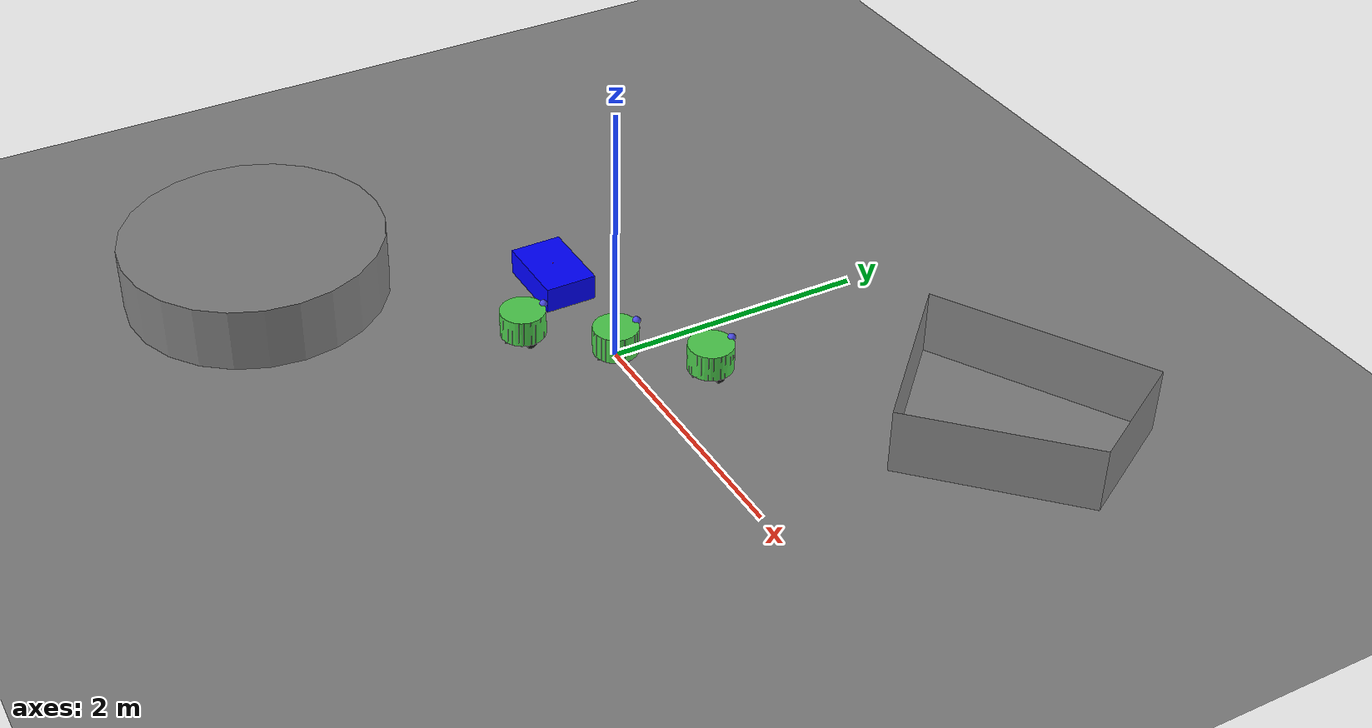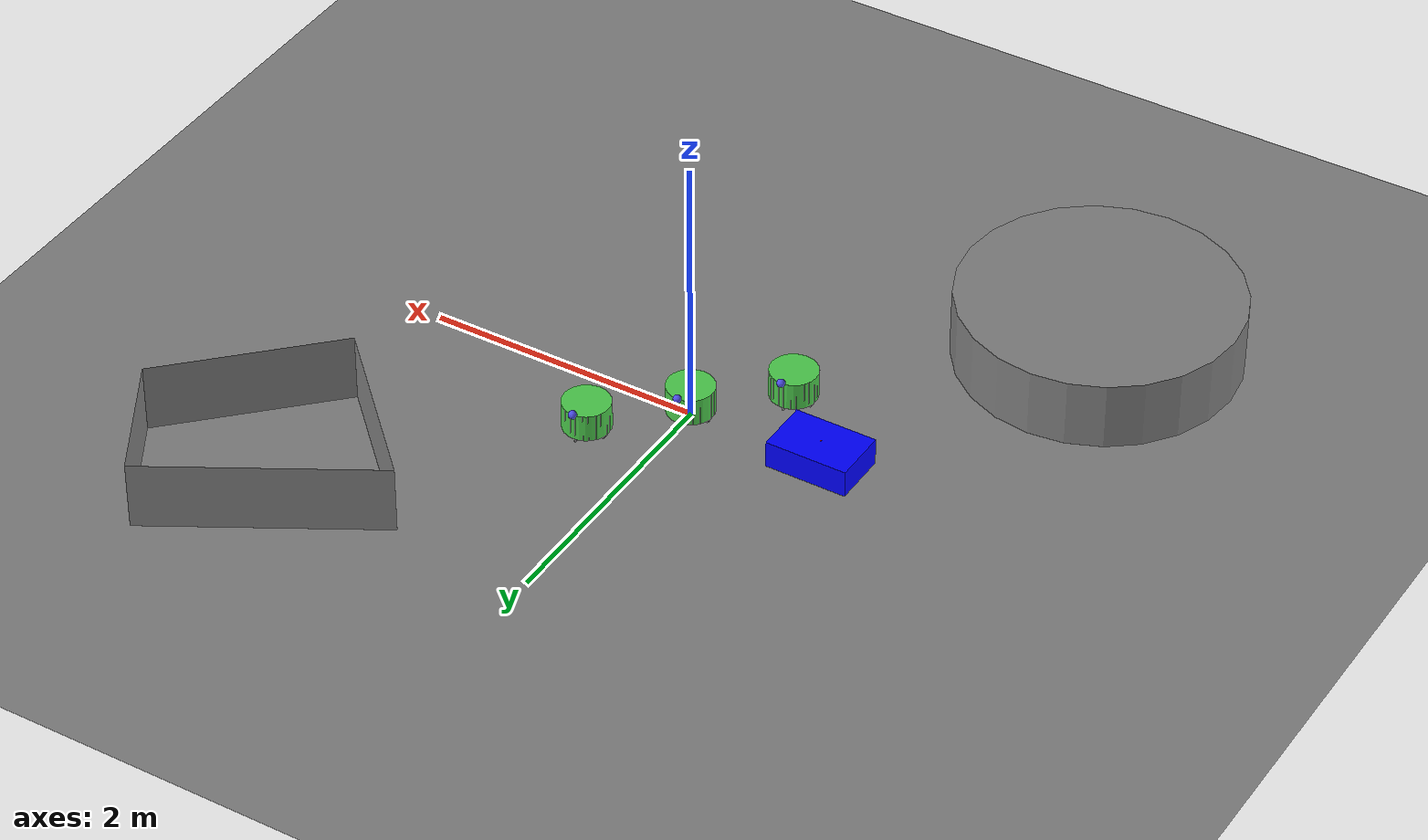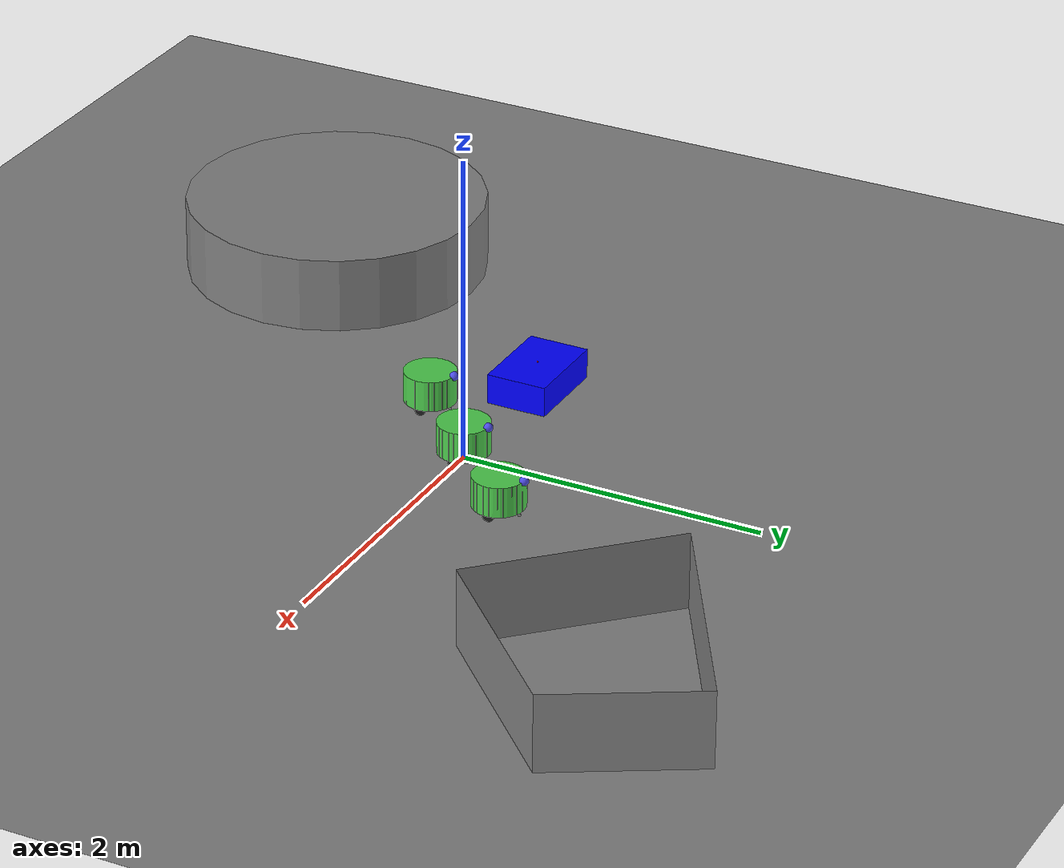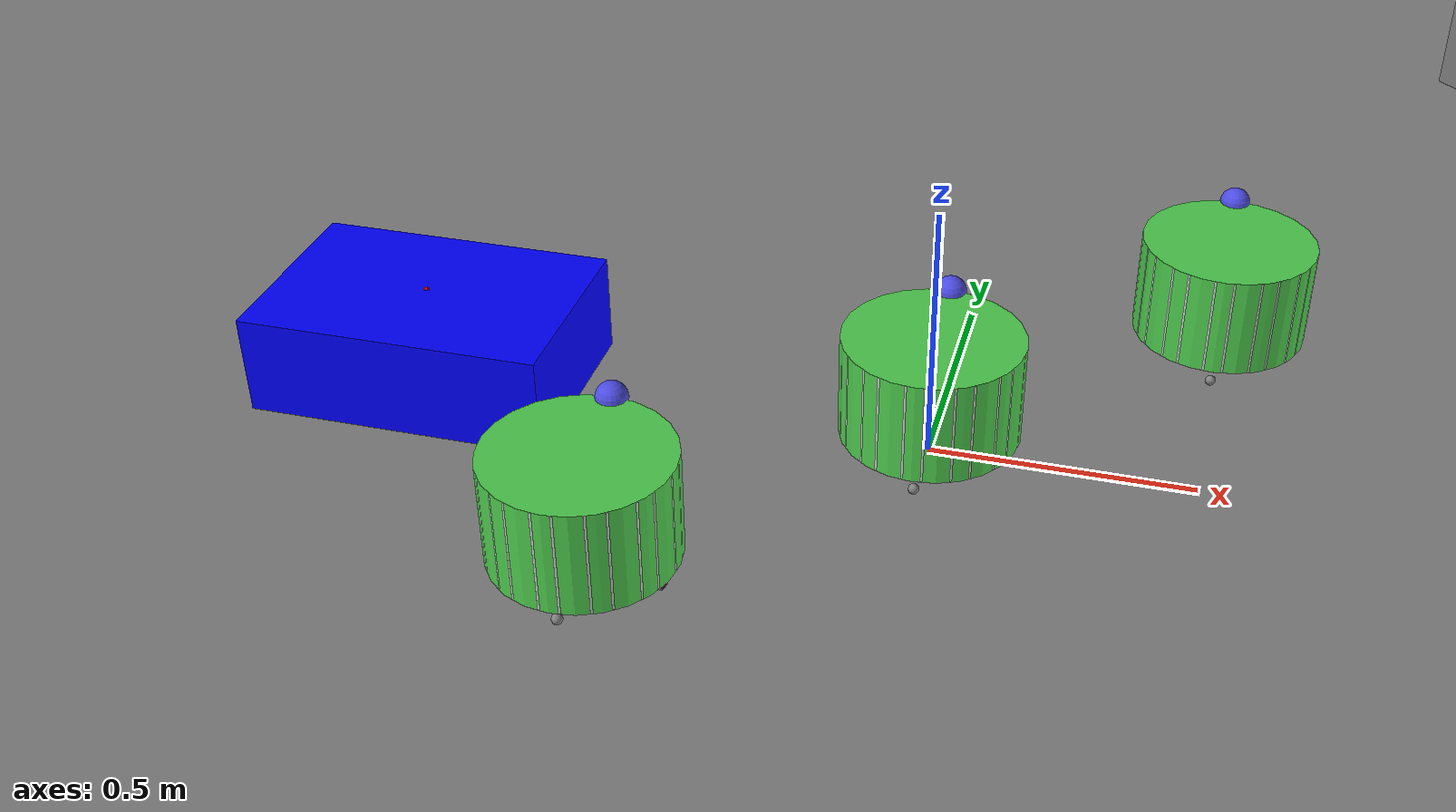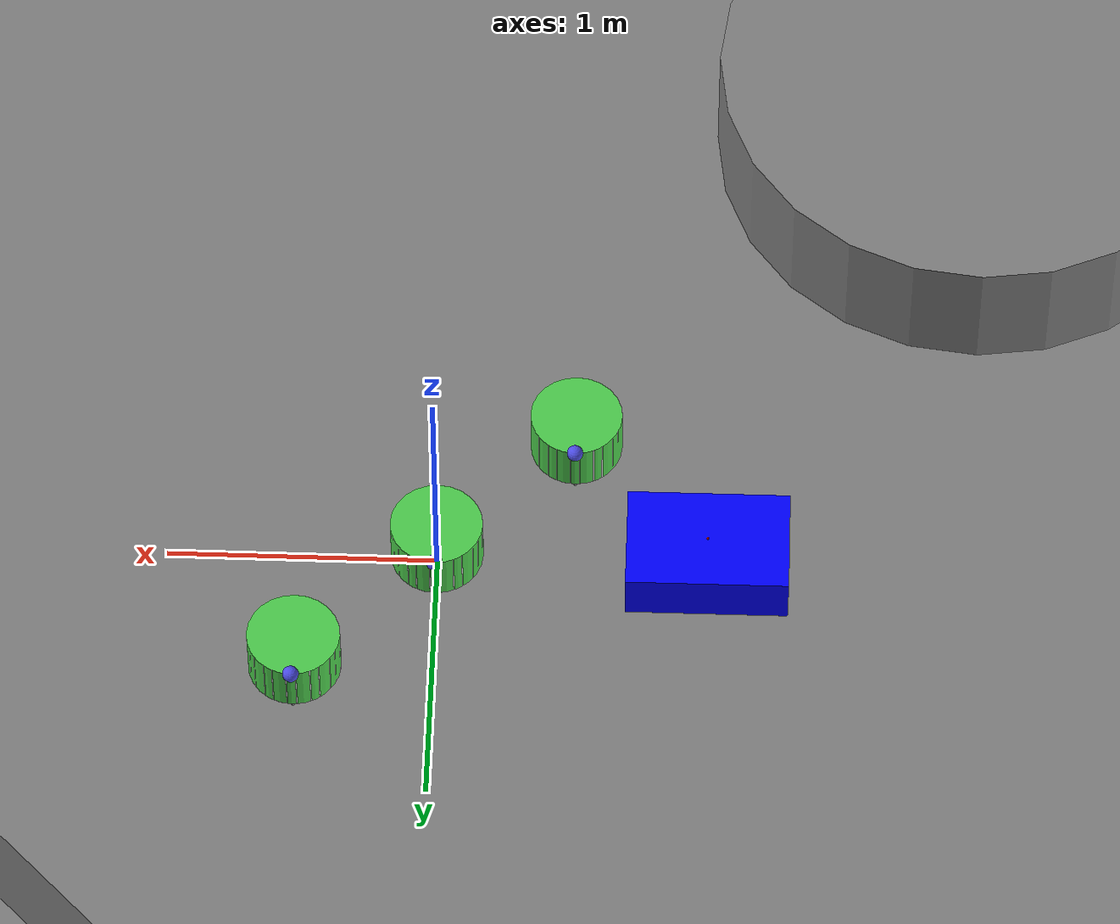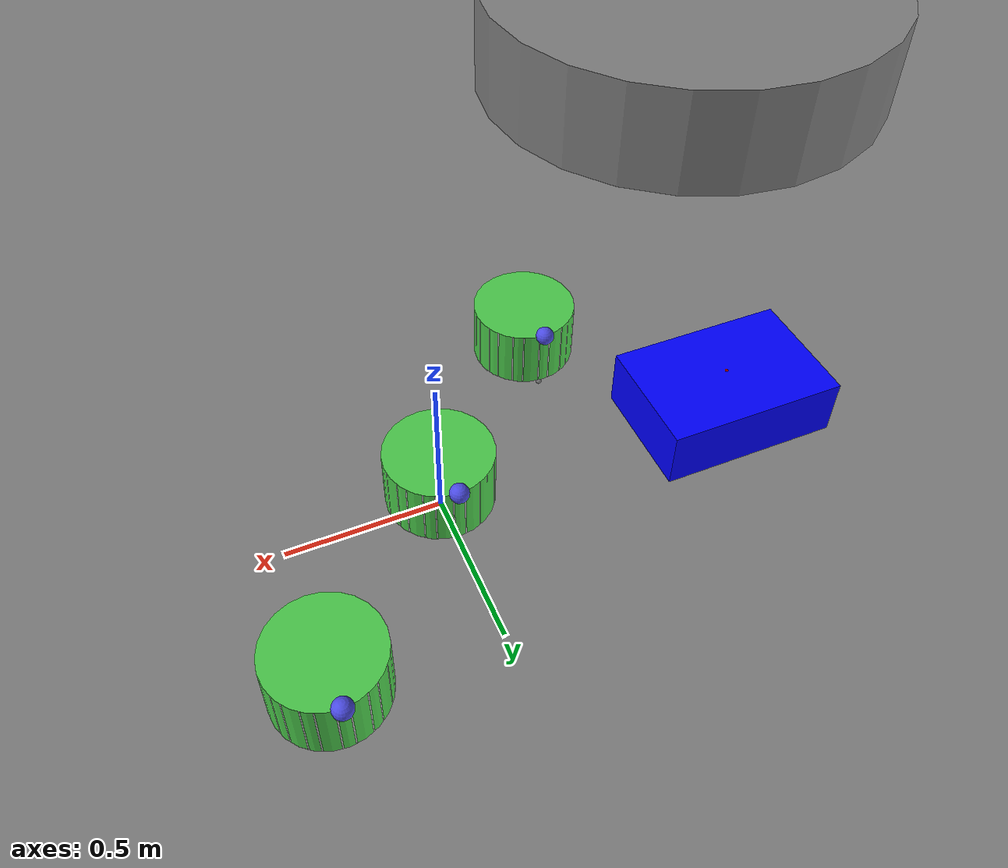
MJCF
<mujoco>
    <visual>
        <global offwidth="1200" offheight="900" />
    </visual>
    <sensor>
        <rangefinder name="rangefider1" site="rangefider1_site" />
        <rangefinder
            name="rangefider2" site="rangefider2_site" />
        <rangefinder name="rangefider3"
            site="rangefider3_site" />
        <rangefinder name="rangefider4" site="rangefider4_site" />
    </sensor>

    <worldbody>
        <light name="uplight" diffuse="1 1 1" pos="0 0 10" dir="0 0 -1" />
        <geom pos="0 0 0" euler="0 0 0" type="plane" size="10 10 0.01" rgba="0.5 0.5 0.5 1" />

        <body pos="2 2 0.25">
            <geom type="box" pos="0.749995669872981 0.4330102018922193 0"
                size="0.49999999999999994 5e-06 0.25" euler="0 0 119.99999999999999" />
            <geom type="box" pos="-0.24999749999999996 0.4330083717652004 0"
                size="0.8660254037844386 5e-06 0.25" euler="0 0 -150.0" />
            <geom type="box" pos="-0.4999964644660942 -0.499996464466094 0"
                size="0.7071067811865476 5e-06 0.25" euler="0 0 -45.000000000000014" />
            <geom type="box" pos="0.49999646446609397 -0.4999964644660941 0"
                size="0.7071067811865476 5e-06 0.25" euler="0 0 44.99999999999999" />
        </body>

        <body pos="-2 -2 0.25">
            <geom type="cylinder" size="1 0.25" />
        </body>

        <body name="robot_0" pos="0 0 0">

            <freejoint name="robot_0"></freejoint>

            <site name="front-flag_0" rgba="0.3 0.3 0.9 1" pos="0 0.17 0.25" type="sphere"
                size="0.03"></site>

            <body name="front-wheel_0" pos="0 0.14 0.01">
                <joint type="ball" pos="0 0 0"></joint>
                <geom type="sphere" size="0.01"></geom>
            </body>

            <body name="back-wheel_0" pos="0 -0.14 0.01">
                <joint type="ball" pos="0 0 0"></joint>
                <geom type="sphere" size="0.01"></geom>
            </body>

            <body name="left-wheel_0" pos="-0.14 0 0.04" euler="0 90 0">
                <joint damping="0.3" name="left-wheel_0" type="hinge" pos="0 0 0" axis="0 0 -1"></joint>
                <geom rgba="0.1 0.1 0.1 1" type="cylinder" size="0.04 0.005"></geom>
            </body>

            <body name="right-wheel_0" pos="0.14 0 0.04" euler="0 -90 0">
                <joint damping="0.3" name="right-wheel_0" type="hinge" pos="0 0 0" axis="0 0 1"></joint>
                <geom rgba="0.1 0.1 0.1 1" type="cylinder" size="0.04 0.005"></geom>
            </body>
            <body name="shell_0">
                <site type="cylinder" rgba="0.3 0.8 0.3 1" size="0.171 0.101"
                    pos="0 0 0.15"></site>
                <geom type="cylinder" rgba="0.8 0.8 0.8 1" size="0.00889711256 0.10"
                    pos="-0.16105288744000001 5.179855921761719e-17 0.15"></geom>
                <geom type="cylinder" rgba="0.8 0.8 0.8 1" size="0.00889711256 0.10"
                    pos="-0.160170622871362 -0.016834610828921542 0.15"></geom>
                <geom type="cylinder" rgba="0.8 0.8 0.8 1" size="0.00889711256 0.10"
                    pos="-0.15753349544068768 -0.03348477813873268 0.15"></geom>
                <geom type="cylinder" rgba="0.8 0.8 0.8 1" size="0.00889711256 0.10"
                    pos="-0.15317039806796193 -0.04976807921211548 0.15"></geom>
                <geom type="cylinder" rgba="0.8 0.8 0.8 1" size="0.00889711256 0.10"
                    pos="-0.14712913376103712 -0.06550611079501029 0.15"></geom>
                <geom type="cylinder" rgba="0.8 0.8 0.8 1" size="0.00889711256 0.10"
                    pos="-0.13947589187587578 -0.08052644372 0.15"></geom>
                <geom type="cylinder" rgba="0.8 0.8 0.8 1" size="0.00889711256 0.10"
                    pos="-0.13029452293211552 -0.09466451207635171 0.15"></geom>
                <geom type="cylinder" rgba="0.8 0.8 0.8 1" size="0.00889711256 0.10"
                    pos="-0.11968561992922924 -0.10776541622857212 0.15"></geom>
                <geom type="cylinder" rgba="0.8 0.8 0.8 1" size="0.00889711256 0.10"
                    pos="-0.10776541622857215 -0.11968561992922923 0.15"></geom>
                <geom type="cylinder" rgba="0.8 0.8 0.8 1" size="0.00889711256 0.10"
                    pos="-0.09466451207635167 -0.13029452293211555 0.15"></geom>
                <geom type="cylinder" rgba="0.8 0.8 0.8 1" size="0.00889711256 0.10"
                    pos="-0.08052644372000005 -0.13947589187587572 0.15"></geom>
                <geom type="cylinder" rgba="0.8 0.8 0.8 1" size="0.00889711256 0.10"
                    pos="-0.06550611079501033 -0.1471291337610371 0.15"></geom>
                <geom type="cylinder" rgba="0.8 0.8 0.8 1" size="0.00889711256 0.10"
                    pos="-0.04976807921211555 -0.1531703980679619 0.15"></geom>
                <geom type="cylinder" rgba="0.8 0.8 0.8 1" size="0.00889711256 0.10"
                    pos="-0.03348477813873268 -0.15753349544068768 0.15"></geom>
                <geom type="cylinder" rgba="0.8 0.8 0.8 1" size="0.00889711256 0.10"
                    pos="-0.016834610828921584 -0.160170622871362 0.15"></geom>
                <geom type="cylinder" rgba="0.8 0.8 0.8 1" size="0.00889711256 0.10"
                    pos="-2.5899279608808588e-17 -0.16105288744000001 0.15"></geom>
                <geom type="cylinder" rgba="0.8 0.8 0.8 1" size="0.00889711256 0.10"
                    pos="0.016834610828921567 -0.160170622871362 0.15"></geom>
                <geom type="cylinder" rgba="0.8 0.8 0.8 1" size="0.00889711256 0.10"
                    pos="0.033484778138732664 -0.15753349544068768 0.15"></geom>
                <geom type="cylinder" rgba="0.8 0.8 0.8 1" size="0.00889711256 0.10"
                    pos="0.049768079212115526 -0.1531703980679619 0.15"></geom>
                <geom type="cylinder" rgba="0.8 0.8 0.8 1" size="0.00889711256 0.10"
                    pos="0.06550611079501031 -0.1471291337610371 0.15"></geom>
                <geom type="cylinder" rgba="0.8 0.8 0.8 1" size="0.00889711256 0.10"
                    pos="0.08052644372 -0.13947589187587578 0.15"></geom>
                <geom type="cylinder" rgba="0.8 0.8 0.8 1" size="0.00889711256 0.10"
                    pos="0.09466451207635167 -0.13029452293211555 0.15"></geom>
                <geom type="cylinder" rgba="0.8 0.8 0.8 1" size="0.00889711256 0.10"
                    pos="0.10776541622857215 -0.11968561992922923 0.15"></geom>
                <geom type="cylinder" rgba="0.8 0.8 0.8 1" size="0.00889711256 0.10"
                    pos="0.11968561992922923 -0.10776541622857215 0.15"></geom>
                <geom type="cylinder" rgba="0.8 0.8 0.8 1" size="0.00889711256 0.10"
                    pos="0.13029452293211555 -0.09466451207635168 0.15"></geom>
                <geom type="cylinder" rgba="0.8 0.8 0.8 1" size="0.00889711256 0.10"
                    pos="0.13947589187587575 -0.08052644372000001 0.15"></geom>
                <geom type="cylinder" rgba="0.8 0.8 0.8 1" size="0.00889711256 0.10"
                    pos="0.1471291337610371 -0.06550611079501031 0.15"></geom>
                <geom type="cylinder" rgba="0.8 0.8 0.8 1" size="0.00889711256 0.10"
                    pos="0.1531703980679619 -0.04976807921211552 0.15"></geom>
                <geom type="cylinder" rgba="0.8 0.8 0.8 1" size="0.00889711256 0.10"
                    pos="0.15753349544068768 -0.03348477813873268 0.15"></geom>
                <geom type="cylinder" rgba="0.8 0.8 0.8 1" size="0.00889711256 0.10"
                    pos="0.160170622871362 -0.01683461082892157 0.15"></geom>
                <geom type="cylinder" rgba="0.8 0.8 0.8 1" size="0.00889711256 0.10"
                    pos="0.16105288744000001 0.0 0.15"></geom>
                <geom type="cylinder" rgba="0.8 0.8 0.8 1" size="0.00889711256 0.10"
                    pos="0.160170622871362 0.01683461082892157 0.15"></geom>
                <geom type="cylinder" rgba="0.8 0.8 0.8 1" size="0.00889711256 0.10"
                    pos="0.15753349544068768 0.03348477813873268 0.15"></geom>
                <geom type="cylinder" rgba="0.8 0.8 0.8 1" size="0.00889711256 0.10"
                    pos="0.1531703980679619 0.04976807921211552 0.15"></geom>
                <geom type="cylinder" rgba="0.8 0.8 0.8 1" size="0.00889711256 0.10"
                    pos="0.1471291337610371 0.06550611079501031 0.15"></geom>
                <geom type="cylinder" rgba="0.8 0.8 0.8 1" size="0.00889711256 0.10"
                    pos="0.13947589187587575 0.08052644372000001 0.15"></geom>
                <geom type="cylinder" rgba="0.8 0.8 0.8 1" size="0.00889711256 0.10"
                    pos="0.13029452293211555 0.09466451207635168 0.15"></geom>
                <geom type="cylinder" rgba="0.8 0.8 0.8 1" size="0.00889711256 0.10"
                    pos="0.11968561992922923 0.10776541622857215 0.15"></geom>
                <geom type="cylinder" rgba="0.8 0.8 0.8 1" size="0.00889711256 0.10"
                    pos="0.10776541622857215 0.11968561992922923 0.15"></geom>
                <geom type="cylinder" rgba="0.8 0.8 0.8 1" size="0.00889711256 0.10"
                    pos="0.09466451207635167 0.13029452293211555 0.15"></geom>
                <geom type="cylinder" rgba="0.8 0.8 0.8 1" size="0.00889711256 0.10"
                    pos="0.08052644372 0.13947589187587578 0.15"></geom>
                <geom type="cylinder" rgba="0.8 0.8 0.8 1" size="0.00889711256 0.10"
                    pos="0.06550611079501031 0.1471291337610371 0.15"></geom>
                <geom type="cylinder" rgba="0.8 0.8 0.8 1" size="0.00889711256 0.10"
                    pos="0.049768079212115526 0.1531703980679619 0.15"></geom>
                <geom type="cylinder" rgba="0.8 0.8 0.8 1" size="0.00889711256 0.10"
                    pos="0.033484778138732664 0.15753349544068768 0.15"></geom>
                <geom type="cylinder" rgba="0.8 0.8 0.8 1" size="0.00889711256 0.10"
                    pos="0.016834610828921567 0.160170622871362 0.15"></geom>
                <geom type="cylinder" rgba="0.8 0.8 0.8 1" size="0.00889711256 0.10"
                    pos="-2.5899279608808588e-17 0.16105288744000001 0.15"></geom>
                <geom type="cylinder" rgba="0.8 0.8 0.8 1" size="0.00889711256 0.10"
                    pos="-0.016834610828921584 0.160170622871362 0.15"></geom>
                <geom type="cylinder" rgba="0.8 0.8 0.8 1" size="0.00889711256 0.10"
                    pos="-0.03348477813873268 0.15753349544068768 0.15"></geom>
                <geom type="cylinder" rgba="0.8 0.8 0.8 1" size="0.00889711256 0.10"
                    pos="-0.04976807921211555 0.1531703980679619 0.15"></geom>
                <geom type="cylinder" rgba="0.8 0.8 0.8 1" size="0.00889711256 0.10"
                    pos="-0.06550611079501033 0.1471291337610371 0.15"></geom>
                <geom type="cylinder" rgba="0.8 0.8 0.8 1" size="0.00889711256 0.10"
                    pos="-0.08052644372000005 0.13947589187587572 0.15"></geom>
                <geom type="cylinder" rgba="0.8 0.8 0.8 1" size="0.00889711256 0.10"
                    pos="-0.09466451207635167 0.13029452293211555 0.15"></geom>
                <geom type="cylinder" rgba="0.8 0.8 0.8 1" size="0.00889711256 0.10"
                    pos="-0.10776541622857215 0.11968561992922923 0.15"></geom>
                <geom type="cylinder" rgba="0.8 0.8 0.8 1" size="0.00889711256 0.10"
                    pos="-0.11968561992922924 0.10776541622857212 0.15"></geom>
                <geom type="cylinder" rgba="0.8 0.8 0.8 1" size="0.00889711256 0.10"
                    pos="-0.13029452293211552 0.09466451207635171 0.15"></geom>
                <geom type="cylinder" rgba="0.8 0.8 0.8 1" size="0.00889711256 0.10"
                    pos="-0.13947589187587578 0.08052644372 0.15"></geom>
                <geom type="cylinder" rgba="0.8 0.8 0.8 1" size="0.00889711256 0.10"
                    pos="-0.14712913376103712 0.06550611079501029 0.15"></geom>
                <geom type="cylinder" rgba="0.8 0.8 0.8 1" size="0.00889711256 0.10"
                    pos="-0.15317039806796193 0.04976807921211548 0.15"></geom>
                <geom type="cylinder" rgba="0.8 0.8 0.8 1" size="0.00889711256 0.10"
                    pos="-0.15753349544068768 0.03348477813873268 0.15"></geom>
                <geom type="cylinder" rgba="0.8 0.8 0.8 1" size="0.00889711256 0.10"
                    pos="-0.160170622871362 0.016834610828921542 0.15"></geom>
            </body>
        </body>

        <body name="robot_1" pos="0.5 0.5 0">

            <freejoint name="robot_1"></freejoint>

            <site name="front-flag_1" rgba="0.3 0.3 0.9 1" pos="0 0.17 0.25" type="sphere"
                size="0.03"></site>

            <body name="front-wheel_1" pos="0 0.14 0.01">
                <joint type="ball" pos="0 0 0"></joint>
                <geom type="sphere" size="0.01"></geom>
            </body>

            <body name="back-wheel_1" pos="0 -0.14 0.01">
                <joint type="ball" pos="0 0 0"></joint>
                <geom type="sphere" size="0.01"></geom>
            </body>

            <body name="left-wheel_1" pos="-0.14 0 0.04" euler="0 90 0">
                <joint damping="0.3" name="left-wheel_1" type="hinge" pos="0 0 0" axis="0 0 -1"></joint>
                <geom rgba="0.1 0.1 0.1 1" type="cylinder" size="0.04 0.005"></geom>
            </body>

            <body name="right-wheel_1" pos="0.14 0 0.04" euler="0 -90 0">
                <joint damping="0.3" name="right-wheel_1" type="hinge" pos="0 0 0" axis="0 0 1"></joint>
                <geom rgba="0.1 0.1 0.1 1" type="cylinder" size="0.04 0.005"></geom>
            </body>
            <body name="shell_1">
                <site type="cylinder" rgba="0.3 0.8 0.3 1" size="0.171 0.101"
                    pos="0 0 0.15"></site>
                <geom type="cylinder" rgba="0.8 0.8 0.8 1" size="0.00889711256 0.10"
                    pos="-0.16105288744000001 5.179855921761719e-17 0.15"></geom>
                <geom type="cylinder" rgba="0.8 0.8 0.8 1" size="0.00889711256 0.10"
                    pos="-0.160170622871362 -0.016834610828921542 0.15"></geom>
                <geom type="cylinder" rgba="0.8 0.8 0.8 1" size="0.00889711256 0.10"
                    pos="-0.15753349544068768 -0.03348477813873268 0.15"></geom>
                <geom type="cylinder" rgba="0.8 0.8 0.8 1" size="0.00889711256 0.10"
                    pos="-0.15317039806796193 -0.04976807921211548 0.15"></geom>
                <geom type="cylinder" rgba="0.8 0.8 0.8 1" size="0.00889711256 0.10"
                    pos="-0.14712913376103712 -0.06550611079501029 0.15"></geom>
                <geom type="cylinder" rgba="0.8 0.8 0.8 1" size="0.00889711256 0.10"
                    pos="-0.13947589187587578 -0.08052644372 0.15"></geom>
                <geom type="cylinder" rgba="0.8 0.8 0.8 1" size="0.00889711256 0.10"
                    pos="-0.13029452293211552 -0.09466451207635171 0.15"></geom>
                <geom type="cylinder" rgba="0.8 0.8 0.8 1" size="0.00889711256 0.10"
                    pos="-0.11968561992922924 -0.10776541622857212 0.15"></geom>
                <geom type="cylinder" rgba="0.8 0.8 0.8 1" size="0.00889711256 0.10"
                    pos="-0.10776541622857215 -0.11968561992922923 0.15"></geom>
                <geom type="cylinder" rgba="0.8 0.8 0.8 1" size="0.00889711256 0.10"
                    pos="-0.09466451207635167 -0.13029452293211555 0.15"></geom>
                <geom type="cylinder" rgba="0.8 0.8 0.8 1" size="0.00889711256 0.10"
                    pos="-0.08052644372000005 -0.13947589187587572 0.15"></geom>
                <geom type="cylinder" rgba="0.8 0.8 0.8 1" size="0.00889711256 0.10"
                    pos="-0.06550611079501033 -0.1471291337610371 0.15"></geom>
                <geom type="cylinder" rgba="0.8 0.8 0.8 1" size="0.00889711256 0.10"
                    pos="-0.04976807921211555 -0.1531703980679619 0.15"></geom>
                <geom type="cylinder" rgba="0.8 0.8 0.8 1" size="0.00889711256 0.10"
                    pos="-0.03348477813873268 -0.15753349544068768 0.15"></geom>
                <geom type="cylinder" rgba="0.8 0.8 0.8 1" size="0.00889711256 0.10"
                    pos="-0.016834610828921584 -0.160170622871362 0.15"></geom>
                <geom type="cylinder" rgba="0.8 0.8 0.8 1" size="0.00889711256 0.10"
                    pos="-2.5899279608808588e-17 -0.16105288744000001 0.15"></geom>
                <geom type="cylinder" rgba="0.8 0.8 0.8 1" size="0.00889711256 0.10"
                    pos="0.016834610828921567 -0.160170622871362 0.15"></geom>
                <geom type="cylinder" rgba="0.8 0.8 0.8 1" size="0.00889711256 0.10"
                    pos="0.033484778138732664 -0.15753349544068768 0.15"></geom>
                <geom type="cylinder" rgba="0.8 0.8 0.8 1" size="0.00889711256 0.10"
                    pos="0.049768079212115526 -0.1531703980679619 0.15"></geom>
                <geom type="cylinder" rgba="0.8 0.8 0.8 1" size="0.00889711256 0.10"
                    pos="0.06550611079501031 -0.1471291337610371 0.15"></geom>
                <geom type="cylinder" rgba="0.8 0.8 0.8 1" size="0.00889711256 0.10"
                    pos="0.08052644372 -0.13947589187587578 0.15"></geom>
                <geom type="cylinder" rgba="0.8 0.8 0.8 1" size="0.00889711256 0.10"
                    pos="0.09466451207635167 -0.13029452293211555 0.15"></geom>
                <geom type="cylinder" rgba="0.8 0.8 0.8 1" size="0.00889711256 0.10"
                    pos="0.10776541622857215 -0.11968561992922923 0.15"></geom>
                <geom type="cylinder" rgba="0.8 0.8 0.8 1" size="0.00889711256 0.10"
                    pos="0.11968561992922923 -0.10776541622857215 0.15"></geom>
                <geom type="cylinder" rgba="0.8 0.8 0.8 1" size="0.00889711256 0.10"
                    pos="0.13029452293211555 -0.09466451207635168 0.15"></geom>
                <geom type="cylinder" rgba="0.8 0.8 0.8 1" size="0.00889711256 0.10"
                    pos="0.13947589187587575 -0.08052644372000001 0.15"></geom>
                <geom type="cylinder" rgba="0.8 0.8 0.8 1" size="0.00889711256 0.10"
                    pos="0.1471291337610371 -0.06550611079501031 0.15"></geom>
                <geom type="cylinder" rgba="0.8 0.8 0.8 1" size="0.00889711256 0.10"
                    pos="0.1531703980679619 -0.04976807921211552 0.15"></geom>
                <geom type="cylinder" rgba="0.8 0.8 0.8 1" size="0.00889711256 0.10"
                    pos="0.15753349544068768 -0.03348477813873268 0.15"></geom>
                <geom type="cylinder" rgba="0.8 0.8 0.8 1" size="0.00889711256 0.10"
                    pos="0.160170622871362 -0.01683461082892157 0.15"></geom>
                <geom type="cylinder" rgba="0.8 0.8 0.8 1" size="0.00889711256 0.10"
                    pos="0.16105288744000001 0.0 0.15"></geom>
                <geom type="cylinder" rgba="0.8 0.8 0.8 1" size="0.00889711256 0.10"
                    pos="0.160170622871362 0.01683461082892157 0.15"></geom>
                <geom type="cylinder" rgba="0.8 0.8 0.8 1" size="0.00889711256 0.10"
                    pos="0.15753349544068768 0.03348477813873268 0.15"></geom>
                <geom type="cylinder" rgba="0.8 0.8 0.8 1" size="0.00889711256 0.10"
                    pos="0.1531703980679619 0.04976807921211552 0.15"></geom>
                <geom type="cylinder" rgba="0.8 0.8 0.8 1" size="0.00889711256 0.10"
                    pos="0.1471291337610371 0.06550611079501031 0.15"></geom>
                <geom type="cylinder" rgba="0.8 0.8 0.8 1" size="0.00889711256 0.10"
                    pos="0.13947589187587575 0.08052644372000001 0.15"></geom>
                <geom type="cylinder" rgba="0.8 0.8 0.8 1" size="0.00889711256 0.10"
                    pos="0.13029452293211555 0.09466451207635168 0.15"></geom>
                <geom type="cylinder" rgba="0.8 0.8 0.8 1" size="0.00889711256 0.10"
                    pos="0.11968561992922923 0.10776541622857215 0.15"></geom>
                <geom type="cylinder" rgba="0.8 0.8 0.8 1" size="0.00889711256 0.10"
                    pos="0.10776541622857215 0.11968561992922923 0.15"></geom>
                <geom type="cylinder" rgba="0.8 0.8 0.8 1" size="0.00889711256 0.10"
                    pos="0.09466451207635167 0.13029452293211555 0.15"></geom>
                <geom type="cylinder" rgba="0.8 0.8 0.8 1" size="0.00889711256 0.10"
                    pos="0.08052644372 0.13947589187587578 0.15"></geom>
                <geom type="cylinder" rgba="0.8 0.8 0.8 1" size="0.00889711256 0.10"
                    pos="0.06550611079501031 0.1471291337610371 0.15"></geom>
                <geom type="cylinder" rgba="0.8 0.8 0.8 1" size="0.00889711256 0.10"
                    pos="0.049768079212115526 0.1531703980679619 0.15"></geom>
                <geom type="cylinder" rgba="0.8 0.8 0.8 1" size="0.00889711256 0.10"
                    pos="0.033484778138732664 0.15753349544068768 0.15"></geom>
                <geom type="cylinder" rgba="0.8 0.8 0.8 1" size="0.00889711256 0.10"
                    pos="0.016834610828921567 0.160170622871362 0.15"></geom>
                <geom type="cylinder" rgba="0.8 0.8 0.8 1" size="0.00889711256 0.10"
                    pos="-2.5899279608808588e-17 0.16105288744000001 0.15"></geom>
                <geom type="cylinder" rgba="0.8 0.8 0.8 1" size="0.00889711256 0.10"
                    pos="-0.016834610828921584 0.160170622871362 0.15"></geom>
                <geom type="cylinder" rgba="0.8 0.8 0.8 1" size="0.00889711256 0.10"
                    pos="-0.03348477813873268 0.15753349544068768 0.15"></geom>
                <geom type="cylinder" rgba="0.8 0.8 0.8 1" size="0.00889711256 0.10"
                    pos="-0.04976807921211555 0.1531703980679619 0.15"></geom>
                <geom type="cylinder" rgba="0.8 0.8 0.8 1" size="0.00889711256 0.10"
                    pos="-0.06550611079501033 0.1471291337610371 0.15"></geom>
                <geom type="cylinder" rgba="0.8 0.8 0.8 1" size="0.00889711256 0.10"
                    pos="-0.08052644372000005 0.13947589187587572 0.15"></geom>
                <geom type="cylinder" rgba="0.8 0.8 0.8 1" size="0.00889711256 0.10"
                    pos="-0.09466451207635167 0.13029452293211555 0.15"></geom>
                <geom type="cylinder" rgba="0.8 0.8 0.8 1" size="0.00889711256 0.10"
                    pos="-0.10776541622857215 0.11968561992922923 0.15"></geom>
                <geom type="cylinder" rgba="0.8 0.8 0.8 1" size="0.00889711256 0.10"
                    pos="-0.11968561992922924 0.10776541622857212 0.15"></geom>
                <geom type="cylinder" rgba="0.8 0.8 0.8 1" size="0.00889711256 0.10"
                    pos="-0.13029452293211552 0.09466451207635171 0.15"></geom>
                <geom type="cylinder" rgba="0.8 0.8 0.8 1" size="0.00889711256 0.10"
                    pos="-0.13947589187587578 0.08052644372 0.15"></geom>
                <geom type="cylinder" rgba="0.8 0.8 0.8 1" size="0.00889711256 0.10"
                    pos="-0.14712913376103712 0.06550611079501029 0.15"></geom>
                <geom type="cylinder" rgba="0.8 0.8 0.8 1" size="0.00889711256 0.10"
                    pos="-0.15317039806796193 0.04976807921211548 0.15"></geom>
                <geom type="cylinder" rgba="0.8 0.8 0.8 1" size="0.00889711256 0.10"
                    pos="-0.15753349544068768 0.03348477813873268 0.15"></geom>
                <geom type="cylinder" rgba="0.8 0.8 0.8 1" size="0.00889711256 0.10"
                    pos="-0.160170622871362 0.016834610828921542 0.15"></geom>
            </body>
        </body>

        <body name="robot_2" pos="-0.5 -0.5 0">

            <freejoint name="robot_2"></freejoint>

            <site name="front-flag_2" rgba="0.3 0.3 0.9 1" pos="0 0.17 0.25" type="sphere"
                size="0.03"></site>

            <body name="front-wheel_2" pos="0 0.14 0.01">
                <joint type="ball" pos="0 0 0"></joint>
                <geom type="sphere" size="0.01"></geom>
            </body>

            <body name="back-wheel_2" pos="0 -0.14 0.01">
                <joint type="ball" pos="0 0 0"></joint>
                <geom type="sphere" size="0.01"></geom>
            </body>

            <body name="left-wheel_2" pos="-0.14 0 0.04" euler="0 90 0">
                <joint damping="0.3" name="left-wheel_2" type="hinge" pos="0 0 0" axis="0 0 -1"></joint>
                <geom rgba="0.1 0.1 0.1 1" type="cylinder" size="0.04 0.005"></geom>
            </body>

            <body name="right-wheel_2" pos="0.14 0 0.04" euler="0 -90 0">
                <joint damping="0.3" name="right-wheel_2" type="hinge" pos="0 0 0" axis="0 0 1"></joint>
                <geom rgba="0.1 0.1 0.1 1" type="cylinder" size="0.04 0.005"></geom>
            </body>
            <body name="shell_2">
                <site type="cylinder" rgba="0.3 0.8 0.3 1" size="0.171 0.101"
                    pos="0 0 0.15"></site>
                <geom type="cylinder" rgba="0.8 0.8 0.8 1" size="0.00889711256 0.10"
                    pos="-0.16105288744000001 5.179855921761719e-17 0.15"></geom>
                <geom type="cylinder" rgba="0.8 0.8 0.8 1" size="0.00889711256 0.10"
                    pos="-0.160170622871362 -0.016834610828921542 0.15"></geom>
                <geom type="cylinder" rgba="0.8 0.8 0.8 1" size="0.00889711256 0.10"
                    pos="-0.15753349544068768 -0.03348477813873268 0.15"></geom>
                <geom type="cylinder" rgba="0.8 0.8 0.8 1" size="0.00889711256 0.10"
                    pos="-0.15317039806796193 -0.04976807921211548 0.15"></geom>
                <geom type="cylinder" rgba="0.8 0.8 0.8 1" size="0.00889711256 0.10"
                    pos="-0.14712913376103712 -0.06550611079501029 0.15"></geom>
                <geom type="cylinder" rgba="0.8 0.8 0.8 1" size="0.00889711256 0.10"
                    pos="-0.13947589187587578 -0.08052644372 0.15"></geom>
                <geom type="cylinder" rgba="0.8 0.8 0.8 1" size="0.00889711256 0.10"
                    pos="-0.13029452293211552 -0.09466451207635171 0.15"></geom>
                <geom type="cylinder" rgba="0.8 0.8 0.8 1" size="0.00889711256 0.10"
                    pos="-0.11968561992922924 -0.10776541622857212 0.15"></geom>
                <geom type="cylinder" rgba="0.8 0.8 0.8 1" size="0.00889711256 0.10"
                    pos="-0.10776541622857215 -0.11968561992922923 0.15"></geom>
                <geom type="cylinder" rgba="0.8 0.8 0.8 1" size="0.00889711256 0.10"
                    pos="-0.09466451207635167 -0.13029452293211555 0.15"></geom>
                <geom type="cylinder" rgba="0.8 0.8 0.8 1" size="0.00889711256 0.10"
                    pos="-0.08052644372000005 -0.13947589187587572 0.15"></geom>
                <geom type="cylinder" rgba="0.8 0.8 0.8 1" size="0.00889711256 0.10"
                    pos="-0.06550611079501033 -0.1471291337610371 0.15"></geom>
                <geom type="cylinder" rgba="0.8 0.8 0.8 1" size="0.00889711256 0.10"
                    pos="-0.04976807921211555 -0.1531703980679619 0.15"></geom>
                <geom type="cylinder" rgba="0.8 0.8 0.8 1" size="0.00889711256 0.10"
                    pos="-0.03348477813873268 -0.15753349544068768 0.15"></geom>
                <geom type="cylinder" rgba="0.8 0.8 0.8 1" size="0.00889711256 0.10"
                    pos="-0.016834610828921584 -0.160170622871362 0.15"></geom>
                <geom type="cylinder" rgba="0.8 0.8 0.8 1" size="0.00889711256 0.10"
                    pos="-2.5899279608808588e-17 -0.16105288744000001 0.15"></geom>
                <geom type="cylinder" rgba="0.8 0.8 0.8 1" size="0.00889711256 0.10"
                    pos="0.016834610828921567 -0.160170622871362 0.15"></geom>
                <geom type="cylinder" rgba="0.8 0.8 0.8 1" size="0.00889711256 0.10"
                    pos="0.033484778138732664 -0.15753349544068768 0.15"></geom>
                <geom type="cylinder" rgba="0.8 0.8 0.8 1" size="0.00889711256 0.10"
                    pos="0.049768079212115526 -0.1531703980679619 0.15"></geom>
                <geom type="cylinder" rgba="0.8 0.8 0.8 1" size="0.00889711256 0.10"
                    pos="0.06550611079501031 -0.1471291337610371 0.15"></geom>
                <geom type="cylinder" rgba="0.8 0.8 0.8 1" size="0.00889711256 0.10"
                    pos="0.08052644372 -0.13947589187587578 0.15"></geom>
                <geom type="cylinder" rgba="0.8 0.8 0.8 1" size="0.00889711256 0.10"
                    pos="0.09466451207635167 -0.13029452293211555 0.15"></geom>
                <geom type="cylinder" rgba="0.8 0.8 0.8 1" size="0.00889711256 0.10"
                    pos="0.10776541622857215 -0.11968561992922923 0.15"></geom>
                <geom type="cylinder" rgba="0.8 0.8 0.8 1" size="0.00889711256 0.10"
                    pos="0.11968561992922923 -0.10776541622857215 0.15"></geom>
                <geom type="cylinder" rgba="0.8 0.8 0.8 1" size="0.00889711256 0.10"
                    pos="0.13029452293211555 -0.09466451207635168 0.15"></geom>
                <geom type="cylinder" rgba="0.8 0.8 0.8 1" size="0.00889711256 0.10"
                    pos="0.13947589187587575 -0.08052644372000001 0.15"></geom>
                <geom type="cylinder" rgba="0.8 0.8 0.8 1" size="0.00889711256 0.10"
                    pos="0.1471291337610371 -0.06550611079501031 0.15"></geom>
                <geom type="cylinder" rgba="0.8 0.8 0.8 1" size="0.00889711256 0.10"
                    pos="0.1531703980679619 -0.04976807921211552 0.15"></geom>
                <geom type="cylinder" rgba="0.8 0.8 0.8 1" size="0.00889711256 0.10"
                    pos="0.15753349544068768 -0.03348477813873268 0.15"></geom>
                <geom type="cylinder" rgba="0.8 0.8 0.8 1" size="0.00889711256 0.10"
                    pos="0.160170622871362 -0.01683461082892157 0.15"></geom>
                <geom type="cylinder" rgba="0.8 0.8 0.8 1" size="0.00889711256 0.10"
                    pos="0.16105288744000001 0.0 0.15"></geom>
                <geom type="cylinder" rgba="0.8 0.8 0.8 1" size="0.00889711256 0.10"
                    pos="0.160170622871362 0.01683461082892157 0.15"></geom>
                <geom type="cylinder" rgba="0.8 0.8 0.8 1" size="0.00889711256 0.10"
                    pos="0.15753349544068768 0.03348477813873268 0.15"></geom>
                <geom type="cylinder" rgba="0.8 0.8 0.8 1" size="0.00889711256 0.10"
                    pos="0.1531703980679619 0.04976807921211552 0.15"></geom>
                <geom type="cylinder" rgba="0.8 0.8 0.8 1" size="0.00889711256 0.10"
                    pos="0.1471291337610371 0.06550611079501031 0.15"></geom>
                <geom type="cylinder" rgba="0.8 0.8 0.8 1" size="0.00889711256 0.10"
                    pos="0.13947589187587575 0.08052644372000001 0.15"></geom>
                <geom type="cylinder" rgba="0.8 0.8 0.8 1" size="0.00889711256 0.10"
                    pos="0.13029452293211555 0.09466451207635168 0.15"></geom>
                <geom type="cylinder" rgba="0.8 0.8 0.8 1" size="0.00889711256 0.10"
                    pos="0.11968561992922923 0.10776541622857215 0.15"></geom>
                <geom type="cylinder" rgba="0.8 0.8 0.8 1" size="0.00889711256 0.10"
                    pos="0.10776541622857215 0.11968561992922923 0.15"></geom>
                <geom type="cylinder" rgba="0.8 0.8 0.8 1" size="0.00889711256 0.10"
                    pos="0.09466451207635167 0.13029452293211555 0.15"></geom>
                <geom type="cylinder" rgba="0.8 0.8 0.8 1" size="0.00889711256 0.10"
                    pos="0.08052644372 0.13947589187587578 0.15"></geom>
                <geom type="cylinder" rgba="0.8 0.8 0.8 1" size="0.00889711256 0.10"
                    pos="0.06550611079501031 0.1471291337610371 0.15"></geom>
                <geom type="cylinder" rgba="0.8 0.8 0.8 1" size="0.00889711256 0.10"
                    pos="0.049768079212115526 0.1531703980679619 0.15"></geom>
                <geom type="cylinder" rgba="0.8 0.8 0.8 1" size="0.00889711256 0.10"
                    pos="0.033484778138732664 0.15753349544068768 0.15"></geom>
                <geom type="cylinder" rgba="0.8 0.8 0.8 1" size="0.00889711256 0.10"
                    pos="0.016834610828921567 0.160170622871362 0.15"></geom>
                <geom type="cylinder" rgba="0.8 0.8 0.8 1" size="0.00889711256 0.10"
                    pos="-2.5899279608808588e-17 0.16105288744000001 0.15"></geom>
                <geom type="cylinder" rgba="0.8 0.8 0.8 1" size="0.00889711256 0.10"
                    pos="-0.016834610828921584 0.160170622871362 0.15"></geom>
                <geom type="cylinder" rgba="0.8 0.8 0.8 1" size="0.00889711256 0.10"
                    pos="-0.03348477813873268 0.15753349544068768 0.15"></geom>
                <geom type="cylinder" rgba="0.8 0.8 0.8 1" size="0.00889711256 0.10"
                    pos="-0.04976807921211555 0.1531703980679619 0.15"></geom>
                <geom type="cylinder" rgba="0.8 0.8 0.8 1" size="0.00889711256 0.10"
                    pos="-0.06550611079501033 0.1471291337610371 0.15"></geom>
                <geom type="cylinder" rgba="0.8 0.8 0.8 1" size="0.00889711256 0.10"
                    pos="-0.08052644372000005 0.13947589187587572 0.15"></geom>
                <geom type="cylinder" rgba="0.8 0.8 0.8 1" size="0.00889711256 0.10"
                    pos="-0.09466451207635167 0.13029452293211555 0.15"></geom>
                <geom type="cylinder" rgba="0.8 0.8 0.8 1" size="0.00889711256 0.10"
                    pos="-0.10776541622857215 0.11968561992922923 0.15"></geom>
                <geom type="cylinder" rgba="0.8 0.8 0.8 1" size="0.00889711256 0.10"
                    pos="-0.11968561992922924 0.10776541622857212 0.15"></geom>
                <geom type="cylinder" rgba="0.8 0.8 0.8 1" size="0.00889711256 0.10"
                    pos="-0.13029452293211552 0.09466451207635171 0.15"></geom>
                <geom type="cylinder" rgba="0.8 0.8 0.8 1" size="0.00889711256 0.10"
                    pos="-0.13947589187587578 0.08052644372 0.15"></geom>
                <geom type="cylinder" rgba="0.8 0.8 0.8 1" size="0.00889711256 0.10"
                    pos="-0.14712913376103712 0.06550611079501029 0.15"></geom>
                <geom type="cylinder" rgba="0.8 0.8 0.8 1" size="0.00889711256 0.10"
                    pos="-0.15317039806796193 0.04976807921211548 0.15"></geom>
                <geom type="cylinder" rgba="0.8 0.8 0.8 1" size="0.00889711256 0.10"
                    pos="-0.15753349544068768 0.03348477813873268 0.15"></geom>
                <geom type="cylinder" rgba="0.8 0.8 0.8 1" size="0.00889711256 0.10"
                    pos="-0.160170622871362 0.016834610828921542 0.15"></geom>
            </body>
        </body>

        <body pos="-1 0 0.1">
            <geom type="box" size="0.3 0.2 0.1" rgba="0 0 1 1"
                euler="0 0 0"></geom>
            <site rgba="1 0 0 1" pos="0 0 0.1" euler="-90 0 0"
                name="rangefider1_site" />
            <site rgba="1 0 0 1" pos="0 0 0.1" euler="-90 90 0"
                name="rangefider2_site" />
            <site rgba="1 0 0 1" pos="0 0 0.1" euler="-90 180 0"
                name="rangefider3_site" />
            <site rgba="1 0 0 1" pos="0 0 0.1" euler="-90 270 0"
                name="rangefider4_site" />
        </body>
    </worldbody>

    <actuator>
        <velocity name="left-velocity-servo_0" joint="left-wheel_0" kv="0.05" />
        <velocity name="right-velocity-servo_0" joint="right-wheel_0" kv="0.05" />
    </actuator>

    <actuator>
        <velocity name="left-velocity-servo_1" joint="left-wheel_1" kv="0.05" />
        <velocity name="right-velocity-servo_1" joint="right-wheel_1" kv="0.05" />
    </actuator>

    <actuator>
        <velocity name="left-velocity-servo_2" joint="left-wheel_2" kv="0.05" />
        <velocity name="right-velocity-servo_2" joint="right-wheel_2" kv="0.05" />
    </actuator>

</mujoco>
